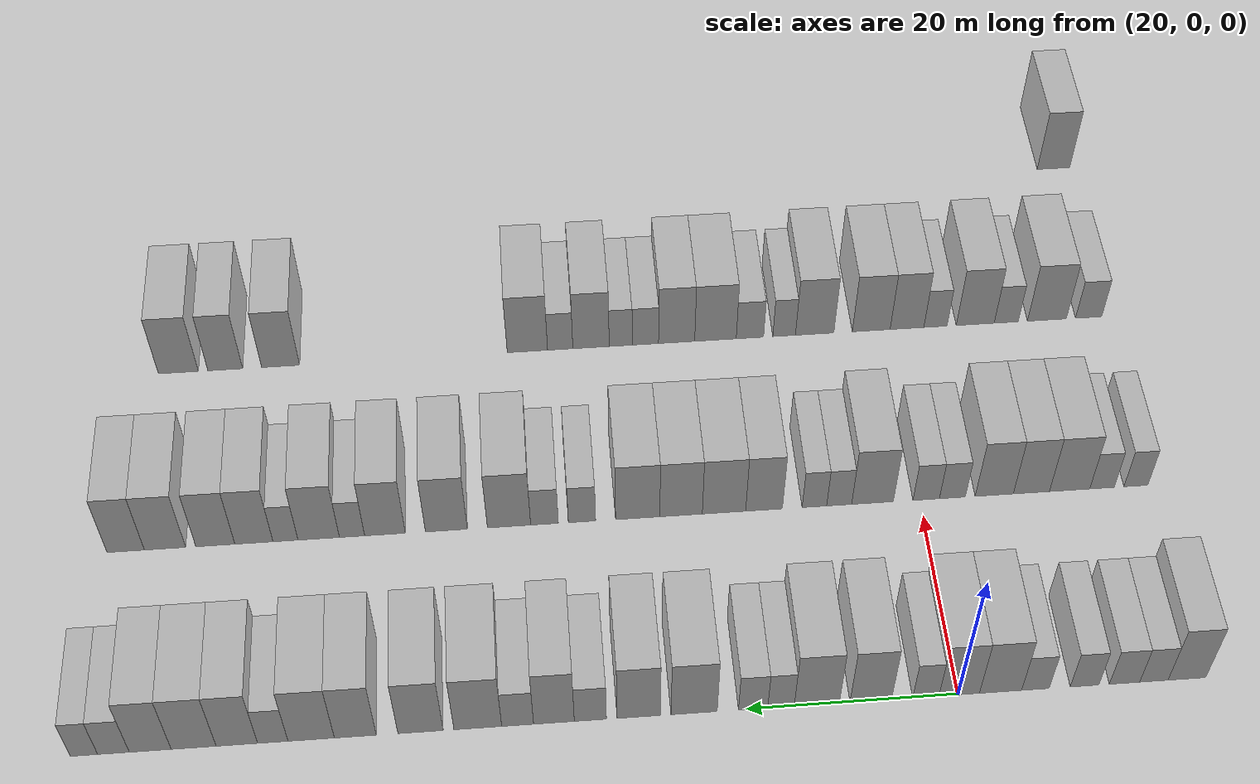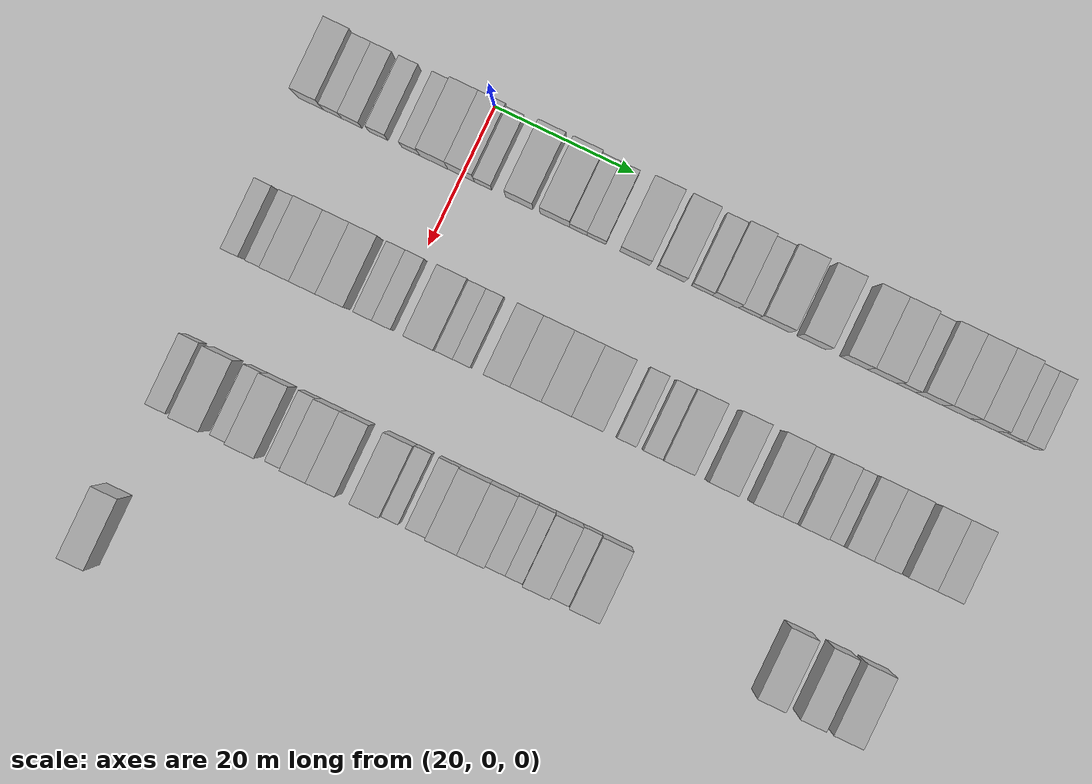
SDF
<sdf version="1.6">
 <world name="default">
  <include><name>ground_plane_1</name><uri>model://HANNAS_ground_plane</uri></include>
  <model name="building_89">
   <static>1</static>
   <pose>25.0000 -21.8179 0 0.000000 0.000000 0.000000</pose>
   <link name="link">
    <pose>0 0 4.50 0 0 0</pose>
    <collision name="collision"><geometry><box><size>10.0000 3.6219 9.0000</size></box></geometry></collision>
    <visual name="visual">
     <cast_shadows>0</cast_shadows>
     <geometry><box><size>10.0000 3.6219 9.0000</size></box></geometry>
     <material>
      <script>
       <uri>model://HANNAS_wall/materials/scripts</uri>
       <uri>model://HANNAS_wall/materials/textures</uri>
       <name>vrc/HANNAS_wall</name>
      </script>
     </material>
    </visual>
   </link>
  </model>
  <model name="building_90">
   <static>1</static>
   <pose>25.0000 -18.6524 0 0.000000 0.000000 0.000000</pose>
   <link name="link">
    <pose>0 0 3.00 0 0 0</pose>
    <collision name="collision"><geometry><box><size>10.0000 2.7091 6.0000</size></box></geometry></collision>
    <visual name="visual">
     <cast_shadows>0</cast_shadows>
     <geometry><box><size>10.0000 2.7091 6.0000</size></box></geometry>
     <material>
      <script>
       <uri>model://HANNAS_wall/materials/scripts</uri>
       <uri>model://HANNAS_wall/materials/textures</uri>
       <name>vrc/HANNAS_wall</name>
      </script>
     </material>
    </visual>
   </link>
  </model>
  <model name="building_91">
   <static>1</static>
   <pose>25.0000 -15.8432 0 0.000000 0.000000 0.000000</pose>
   <link name="link">
    <pose>0 0 3.00 0 0 0</pose>
    <collision name="collision"><geometry><box><size>10.0000 2.9094 6.0000</size></box></geometry></collision>
    <visual name="visual">
     <cast_shadows>0</cast_shadows>
     <geometry><box><size>10.0000 2.9094 6.0000</size></box></geometry>
     <material>
      <script>
       <uri>model://HANNAS_wall/materials/scripts</uri>
       <uri>model://HANNAS_wall/materials/textures</uri>
       <name>vrc/HANNAS_wall</name>
      </script>
     </material>
    </visual>
   </link>
  </model>
  <model name="building_92">
   <static>1</static>
   <pose>25.0000 -12.0194 0 0.000000 0.000000 0.000000</pose>
   <link name="link">
    <pose>0 0 3.00 0 0 0</pose>
    <collision name="collision"><geometry><box><size>10.0000 2.7382 6.0000</size></box></geometry></collision>
    <visual name="visual">
     <cast_shadows>0</cast_shadows>
     <geometry><box><size>10.0000 2.7382 6.0000</size></box></geometry>
     <material>
      <script>
       <uri>model://HANNAS_wall/materials/scripts</uri>
       <uri>model://HANNAS_wall/materials/textures</uri>
       <name>vrc/HANNAS_wall</name>
      </script>
     </material>
    </visual>
   </link>
  </model>
  <model name="building_93">
   <static>1</static>
   <pose>25.0000 -7.3389 0 0.000000 0.000000 0.000000</pose>
   <link name="link">
    <pose>0 0 3.00 0 0 0</pose>
    <collision name="collision"><geometry><box><size>10.0000 2.6229 6.0000</size></box></geometry></collision>
    <visual name="visual">
     <cast_shadows>0</cast_shadows>
     <geometry><box><size>10.0000 2.6229 6.0000</size></box></geometry>
     <material>
      <script>
       <uri>model://HANNAS_wall/materials/scripts</uri>
       <uri>model://HANNAS_wall/materials/textures</uri>
       <name>vrc/HANNAS_wall</name>
      </script>
     </material>
    </visual>
   </link>
  </model>
  <model name="building_94">
   <static>1</static>
   <pose>25.0000 -4.0224 0 0.000000 0.000000 0.000000</pose>
   <link name="link">
    <pose>0 0 4.50 0 0 0</pose>
    <collision name="collision"><geometry><box><size>10.0000 4.0100 9.0000</size></box></geometry></collision>
    <visual name="visual">
     <cast_shadows>0</cast_shadows>
     <geometry><box><size>10.0000 4.0100 9.0000</size></box></geometry>
     <material>
      <script>
       <uri>model://HANNAS_wall/materials/scripts</uri>
       <uri>model://HANNAS_wall/materials/textures</uri>
       <name>vrc/HANNAS_wall</name>
      </script>
     </material>
    </visual>
   </link>
  </model>
  <model name="building_95">
   <static>1</static>
   <pose>25.0000 -0.0886 0 0.000000 0.000000 0.000000</pose>
   <link name="link">
    <pose>0 0 4.50 0 0 0</pose>
    <collision name="collision"><geometry><box><size>10.0000 3.8577 9.0000</size></box></geometry></collision>
    <visual name="visual">
     <cast_shadows>0</cast_shadows>
     <geometry><box><size>10.0000 3.8577 9.0000</size></box></geometry>
     <material>
      <script>
       <uri>model://HANNAS_wall/materials/scripts</uri>
       <uri>model://HANNAS_wall/materials/textures</uri>
       <name>vrc/HANNAS_wall</name>
      </script>
     </material>
    </visual>
   </link>
  </model>
  <model name="building_96">
   <static>1</static>
   <pose>25.0000 3.0819 0 0.000000 0.000000 0.000000</pose>
   <link name="link">
    <pose>0 0 3.00 0 0 0</pose>
    <collision name="collision"><geometry><box><size>10.0000 2.4834 6.0000</size></box></geometry></collision>
    <visual name="visual">
     <cast_shadows>0</cast_shadows>
     <geometry><box><size>10.0000 2.4834 6.0000</size></box></geometry>
     <material>
      <script>
       <uri>model://HANNAS_wall/materials/scripts</uri>
       <uri>model://HANNAS_wall/materials/textures</uri>
       <name>vrc/HANNAS_wall</name>
      </script>
     </material>
    </visual>
   </link>
  </model>
  <model name="building_97">
   <static>1</static>
   <pose>25.0000 8.2869 0 0.000000 0.000000 0.000000</pose>
   <link name="link">
    <pose>0 0 4.50 0 0 0</pose>
    <collision name="collision"><geometry><box><size>10.0000 3.9265 9.0000</size></box></geometry></collision>
    <visual name="visual">
     <cast_shadows>0</cast_shadows>
     <geometry><box><size>10.0000 3.9265 9.0000</size></box></geometry>
     <material>
      <script>
       <uri>model://HANNAS_wall/materials/scripts</uri>
       <uri>model://HANNAS_wall/materials/textures</uri>
       <name>vrc/HANNAS_wall</name>
      </script>
     </material>
    </visual>
   </link>
  </model>
  <model name="building_98">
   <static>1</static>
   <pose>25.0000 13.3786 0 0.000000 0.000000 0.000000</pose>
   <link name="link">
    <pose>0 0 4.50 0 0 0</pose>
    <collision name="collision"><geometry><box><size>10.0000 4.2570 9.0000</size></box></geometry></collision>
    <visual name="visual">
     <cast_shadows>0</cast_shadows>
     <geometry><box><size>10.0000 4.2570 9.0000</size></box></geometry>
     <material>
      <script>
       <uri>model://HANNAS_wall/materials/scripts</uri>
       <uri>model://HANNAS_wall/materials/textures</uri>
       <name>vrc/HANNAS_wall</name>
      </script>
     </material>
    </visual>
   </link>
  </model>
  <model name="building_99">
   <static>1</static>
   <pose>25.0000 16.7518 0 0.000000 0.000000 0.000000</pose>
   <link name="link">
    <pose>0 0 3.00 0 0 0</pose>
    <collision name="collision"><geometry><box><size>10.0000 2.4895 6.0000</size></box></geometry></collision>
    <visual name="visual">
     <cast_shadows>0</cast_shadows>
     <geometry><box><size>10.0000 2.4895 6.0000</size></box></geometry>
     <material>
      <script>
       <uri>model://HANNAS_wall/materials/scripts</uri>
       <uri>model://HANNAS_wall/materials/textures</uri>
       <name>vrc/HANNAS_wall</name>
      </script>
     </material>
    </visual>
   </link>
  </model>
  <model name="building_100">
   <static>1</static>
   <pose>25.0000 19.3694 0 0.000000 0.000000 0.000000</pose>
   <link name="link">
    <pose>0 0 3.00 0 0 0</pose>
    <collision name="collision"><geometry><box><size>10.0000 2.7458 6.0000</size></box></geometry></collision>
    <visual name="visual">
     <cast_shadows>0</cast_shadows>
     <geometry><box><size>10.0000 2.7458 6.0000</size></box></geometry>
     <material>
      <script>
       <uri>model://HANNAS_wall/materials/scripts</uri>
       <uri>model://HANNAS_wall/materials/textures</uri>
       <name>vrc/HANNAS_wall</name>
      </script>
     </material>
    </visual>
   </link>
  </model>
  <model name="building_101">
   <static>1</static>
   <pose>25.0000 24.9051 0 0.000000 0.000000 0.000000</pose>
   <link name="link">
    <pose>0 0 4.50 0 0 0</pose>
    <collision name="collision"><geometry><box><size>10.0000 4.3256 9.0000</size></box></geometry></collision>
    <visual name="visual">
     <cast_shadows>0</cast_shadows>
     <geometry><box><size>10.0000 4.3256 9.0000</size></box></geometry>
     <material>
      <script>
       <uri>model://HANNAS_wall/materials/scripts</uri>
       <uri>model://HANNAS_wall/materials/textures</uri>
       <name>vrc/HANNAS_wall</name>
      </script>
     </material>
    </visual>
   </link>
  </model>
  <model name="building_102">
   <static>1</static>
   <pose>25.0000 30.0839 0 0.000000 0.000000 0.000000</pose>
   <link name="link">
    <pose>0 0 4.50 0 0 0</pose>
    <collision name="collision"><geometry><box><size>10.0000 4.0321 9.0000</size></box></geometry></collision>
    <visual name="visual">
     <cast_shadows>0</cast_shadows>
     <geometry><box><size>10.0000 4.0321 9.0000</size></box></geometry>
     <material>
      <script>
       <uri>model://HANNAS_wall/materials/scripts</uri>
       <uri>model://HANNAS_wall/materials/textures</uri>
       <name>vrc/HANNAS_wall</name>
      </script>
     </material>
    </visual>
   </link>
  </model>
  <model name="building_103">
   <static>1</static>
   <pose>25.0000 34.5970 0 0.000000 0.000000 0.000000</pose>
   <link name="link">
    <pose>0 0 3.00 0 0 0</pose>
    <collision name="collision"><geometry><box><size>10.0000 2.9940 6.0000</size></box></geometry></collision>
    <visual name="visual">
     <cast_shadows>0</cast_shadows>
     <geometry><box><size>10.0000 2.9940 6.0000</size></box></geometry>
     <material>
      <script>
       <uri>model://HANNAS_wall/materials/scripts</uri>
       <uri>model://HANNAS_wall/materials/textures</uri>
       <name>vrc/HANNAS_wall</name>
      </script>
     </material>
    </visual>
   </link>
  </model>
  <model name="building_104">
   <static>1</static>
   <pose>25.0000 37.9865 0 0.000000 0.000000 0.000000</pose>
   <link name="link">
    <pose>0 0 4.50 0 0 0</pose>
    <collision name="collision"><geometry><box><size>10.0000 3.7851 9.0000</size></box></geometry></collision>
    <visual name="visual">
     <cast_shadows>0</cast_shadows>
     <geometry><box><size>10.0000 3.7851 9.0000</size></box></geometry>
     <material>
      <script>
       <uri>model://HANNAS_wall/materials/scripts</uri>
       <uri>model://HANNAS_wall/materials/textures</uri>
       <name>vrc/HANNAS_wall</name>
      </script>
     </material>
    </visual>
   </link>
  </model>
  <model name="building_105">
   <static>1</static>
   <pose>25.0000 41.3603 0 0.000000 0.000000 0.000000</pose>
   <link name="link">
    <pose>0 0 3.00 0 0 0</pose>
    <collision name="collision"><geometry><box><size>10.0000 2.9624 6.0000</size></box></geometry></collision>
    <visual name="visual">
     <cast_shadows>0</cast_shadows>
     <geometry><box><size>10.0000 2.9624 6.0000</size></box></geometry>
     <material>
      <script>
       <uri>model://HANNAS_wall/materials/scripts</uri>
       <uri>model://HANNAS_wall/materials/textures</uri>
       <name>vrc/HANNAS_wall</name>
      </script>
     </material>
    </visual>
   </link>
  </model>
  <model name="building_106">
   <static>1</static>
   <pose>25.0000 45.0570 0 0.000000 0.000000 0.000000</pose>
   <link name="link">
    <pose>0 0 4.50 0 0 0</pose>
    <collision name="collision"><geometry><box><size>10.0000 4.4311 9.0000</size></box></geometry></collision>
    <visual name="visual">
     <cast_shadows>0</cast_shadows>
     <geometry><box><size>10.0000 4.4311 9.0000</size></box></geometry>
     <material>
      <script>
       <uri>model://HANNAS_wall/materials/scripts</uri>
       <uri>model://HANNAS_wall/materials/textures</uri>
       <name>vrc/HANNAS_wall</name>
      </script>
     </material>
    </visual>
   </link>
  </model>
  <model name="building_107">
   <static>1</static>
   <pose>25.0000 50.3610 0 0.000000 0.000000 0.000000</pose>
   <link name="link">
    <pose>0 0 4.50 0 0 0</pose>
    <collision name="collision"><geometry><box><size>10.0000 4.1769 9.0000</size></box></geometry></collision>
    <visual name="visual">
     <cast_shadows>0</cast_shadows>
     <geometry><box><size>10.0000 4.1769 9.0000</size></box></geometry>
     <material>
      <script>
       <uri>model://HANNAS_wall/materials/scripts</uri>
       <uri>model://HANNAS_wall/materials/textures</uri>
       <name>vrc/HANNAS_wall</name>
      </script>
     </material>
    </visual>
   </link>
  </model>
  <model name="building_108">
   <static>1</static>
   <pose>25.0000 56.3817 0 0.000000 0.000000 0.000000</pose>
   <link name="link">
    <pose>0 0 4.50 0 0 0</pose>
    <collision name="collision"><geometry><box><size>10.0000 3.8645 9.0000</size></box></geometry></collision>
    <visual name="visual">
     <cast_shadows>0</cast_shadows>
     <geometry><box><size>10.0000 3.8645 9.0000</size></box></geometry>
     <material>
      <script>
       <uri>model://HANNAS_wall/materials/scripts</uri>
       <uri>model://HANNAS_wall/materials/textures</uri>
       <name>vrc/HANNAS_wall</name>
      </script>
     </material>
    </visual>
   </link>
  </model>
  <model name="building_109">
   <static>1</static>
   <pose>25.0000 60.4448 0 0.000000 0.000000 0.000000</pose>
   <link name="link">
    <pose>0 0 4.50 0 0 0</pose>
    <collision name="collision"><geometry><box><size>10.0000 4.2619 9.0000</size></box></geometry></collision>
    <visual name="visual">
     <cast_shadows>0</cast_shadows>
     <geometry><box><size>10.0000 4.2619 9.0000</size></box></geometry>
     <material>
      <script>
       <uri>model://HANNAS_wall/materials/scripts</uri>
       <uri>model://HANNAS_wall/materials/textures</uri>
       <name>vrc/HANNAS_wall</name>
      </script>
     </material>
    </visual>
   </link>
  </model>
  <model name="building_110">
   <static>1</static>
   <pose>25.0000 63.9657 0 0.000000 0.000000 0.000000</pose>
   <link name="link">
    <pose>0 0 3.00 0 0 0</pose>
    <collision name="collision"><geometry><box><size>10.0000 2.7798 6.0000</size></box></geometry></collision>
    <visual name="visual">
     <cast_shadows>0</cast_shadows>
     <geometry><box><size>10.0000 2.7798 6.0000</size></box></geometry>
     <material>
      <script>
       <uri>model://HANNAS_wall/materials/scripts</uri>
       <uri>model://HANNAS_wall/materials/textures</uri>
       <name>vrc/HANNAS_wall</name>
      </script>
     </material>
    </visual>
   </link>
  </model>
  <model name="building_111">
   <static>1</static>
   <pose>25.0000 67.2646 0 0.000000 0.000000 0.000000</pose>
   <link name="link">
    <pose>0 0 4.50 0 0 0</pose>
    <collision name="collision"><geometry><box><size>10.0000 3.8181 9.0000</size></box></geometry></collision>
    <visual name="visual">
     <cast_shadows>0</cast_shadows>
     <geometry><box><size>10.0000 3.8181 9.0000</size></box></geometry>
     <material>
      <script>
       <uri>model://HANNAS_wall/materials/scripts</uri>
       <uri>model://HANNAS_wall/materials/textures</uri>
       <name>vrc/HANNAS_wall</name>
      </script>
     </material>
    </visual>
   </link>
  </model>
  <model name="building_112">
   <static>1</static>
   <pose>25.0000 71.2280 0 0.000000 0.000000 0.000000</pose>
   <link name="link">
    <pose>0 0 4.50 0 0 0</pose>
    <collision name="collision"><geometry><box><size>10.0000 4.1087 9.0000</size></box></geometry></collision>
    <visual name="visual">
     <cast_shadows>0</cast_shadows>
     <geometry><box><size>10.0000 4.1087 9.0000</size></box></geometry>
     <material>
      <script>
       <uri>model://HANNAS_wall/materials/scripts</uri>
       <uri>model://HANNAS_wall/materials/textures</uri>
       <name>vrc/HANNAS_wall</name>
      </script>
     </material>
    </visual>
   </link>
  </model>
  <model name="building_113">
   <static>1</static>
   <pose>25.0000 75.1966 0 0.000000 0.000000 0.000000</pose>
   <link name="link">
    <pose>0 0 4.50 0 0 0</pose>
    <collision name="collision"><geometry><box><size>10.0000 3.8285 9.0000</size></box></geometry></collision>
    <visual name="visual">
     <cast_shadows>0</cast_shadows>
     <geometry><box><size>10.0000 3.8285 9.0000</size></box></geometry>
     <material>
      <script>
       <uri>model://HANNAS_wall/materials/scripts</uri>
       <uri>model://HANNAS_wall/materials/textures</uri>
       <name>vrc/HANNAS_wall</name>
      </script>
     </material>
    </visual>
   </link>
  </model>
  <model name="building_114">
   <static>1</static>
   <pose>25.0000 78.5517 0 0.000000 0.000000 0.000000</pose>
   <link name="link">
    <pose>0 0 3.00 0 0 0</pose>
    <collision name="collision"><geometry><box><size>10.0000 2.8815 6.0000</size></box></geometry></collision>
    <visual name="visual">
     <cast_shadows>0</cast_shadows>
     <geometry><box><size>10.0000 2.8815 6.0000</size></box></geometry>
     <material>
      <script>
       <uri>model://HANNAS_wall/materials/scripts</uri>
       <uri>model://HANNAS_wall/materials/textures</uri>
       <name>vrc/HANNAS_wall</name>
      </script>
     </material>
    </visual>
   </link>
  </model>
  <model name="building_115">
   <static>1</static>
   <pose>25.0000 81.2301 0 0.000000 0.000000 0.000000</pose>
   <link name="link">
    <pose>0 0 3.00 0 0 0</pose>
    <collision name="collision"><geometry><box><size>10.0000 2.4753 6.0000</size></box></geometry></collision>
    <visual name="visual">
     <cast_shadows>0</cast_shadows>
     <geometry><box><size>10.0000 2.4753 6.0000</size></box></geometry>
     <material>
      <script>
       <uri>model://HANNAS_wall/materials/scripts</uri>
       <uri>model://HANNAS_wall/materials/textures</uri>
       <name>vrc/HANNAS_wall</name>
      </script>
     </material>
    </visual>
   </link>
  </model>
  <model name="building_283">
   <static>1</static>
   <pose>47.0000 -22.0523 0 0.000000 0.000000 0.000000</pose>
   <link name="link">
    <pose>0 0 3.00 0 0 0</pose>
    <collision name="collision"><geometry><box><size>10.0000 2.4547 6.0000</size></box></geometry></collision>
    <visual name="visual">
     <cast_shadows>0</cast_shadows>
     <geometry><box><size>10.0000 2.4547 6.0000</size></box></geometry>
     <material>
      <script>
       <uri>model://HANNAS_wall/materials/scripts</uri>
       <uri>model://HANNAS_wall/materials/textures</uri>
       <name>vrc/HANNAS_wall</name>
      </script>
     </material>
    </visual>
   </link>
  </model>
  <model name="building_284">
   <static>1</static>
   <pose>47.0000 -18.5710 0 0.000000 0.000000 0.000000</pose>
   <link name="link">
    <pose>0 0 3.00 0 0 0</pose>
    <collision name="collision"><geometry><box><size>10.0000 2.5079 6.0000</size></box></geometry></collision>
    <visual name="visual">
     <cast_shadows>0</cast_shadows>
     <geometry><box><size>10.0000 2.5079 6.0000</size></box></geometry>
     <material>
      <script>
       <uri>model://HANNAS_wall/materials/scripts</uri>
       <uri>model://HANNAS_wall/materials/textures</uri>
       <name>vrc/HANNAS_wall</name>
      </script>
     </material>
    </visual>
   </link>
  </model>
  <model name="building_285">
   <static>1</static>
   <pose>47.0000 -15.2539 0 0.000000 0.000000 0.000000</pose>
   <link name="link">
    <pose>0 0 4.50 0 0 0</pose>
    <collision name="collision"><geometry><box><size>10.0000 4.1262 9.0000</size></box></geometry></collision>
    <visual name="visual">
     <cast_shadows>0</cast_shadows>
     <geometry><box><size>10.0000 4.1262 9.0000</size></box></geometry>
     <material>
      <script>
       <uri>model://HANNAS_wall/materials/scripts</uri>
       <uri>model://HANNAS_wall/materials/textures</uri>
       <name>vrc/HANNAS_wall</name>
      </script>
     </material>
    </visual>
   </link>
  </model>
  <model name="building_286">
   <static>1</static>
   <pose>47.0000 -11.3450 0 0.000000 0.000000 0.000000</pose>
   <link name="link">
    <pose>0 0 4.50 0 0 0</pose>
    <collision name="collision"><geometry><box><size>10.0000 3.6914 9.0000</size></box></geometry></collision>
    <visual name="visual">
     <cast_shadows>0</cast_shadows>
     <geometry><box><size>10.0000 3.6914 9.0000</size></box></geometry>
     <material>
      <script>
       <uri>model://HANNAS_wall/materials/scripts</uri>
       <uri>model://HANNAS_wall/materials/textures</uri>
       <name>vrc/HANNAS_wall</name>
      </script>
     </material>
    </visual>
   </link>
  </model>
  <model name="building_287">
   <static>1</static>
   <pose>47.0000 -7.5524 0 0.000000 0.000000 0.000000</pose>
   <link name="link">
    <pose>0 0 4.50 0 0 0</pose>
    <collision name="collision"><geometry><box><size>10.0000 3.8938 9.0000</size></box></geometry></collision>
    <visual name="visual">
     <cast_shadows>0</cast_shadows>
     <geometry><box><size>10.0000 3.8938 9.0000</size></box></geometry>
     <material>
      <script>
       <uri>model://HANNAS_wall/materials/scripts</uri>
       <uri>model://HANNAS_wall/materials/textures</uri>
       <name>vrc/HANNAS_wall</name>
      </script>
     </material>
    </visual>
   </link>
  </model>
  <model name="building_288">
   <static>1</static>
   <pose>47.0000 -3.2856 0 0.000000 0.000000 0.000000</pose>
   <link name="link">
    <pose>0 0 3.00 0 0 0</pose>
    <collision name="collision"><geometry><box><size>10.0000 2.6398 6.0000</size></box></geometry></collision>
    <visual name="visual">
     <cast_shadows>0</cast_shadows>
     <geometry><box><size>10.0000 2.6398 6.0000</size></box></geometry>
     <material>
      <script>
       <uri>model://HANNAS_wall/materials/scripts</uri>
       <uri>model://HANNAS_wall/materials/textures</uri>
       <name>vrc/HANNAS_wall</name>
      </script>
     </material>
    </visual>
   </link>
  </model>
  <model name="building_289">
   <static>1</static>
   <pose>47.0000 -0.6223 0 0.000000 0.000000 0.000000</pose>
   <link name="link">
    <pose>0 0 3.00 0 0 0</pose>
    <collision name="collision"><geometry><box><size>10.0000 2.6866 6.0000</size></box></geometry></collision>
    <visual name="visual">
     <cast_shadows>0</cast_shadows>
     <geometry><box><size>10.0000 2.6866 6.0000</size></box></geometry>
     <material>
      <script>
       <uri>model://HANNAS_wall/materials/scripts</uri>
       <uri>model://HANNAS_wall/materials/textures</uri>
       <name>vrc/HANNAS_wall</name>
      </script>
     </material>
    </visual>
   </link>
  </model>
  <model name="building_290">
   <static>1</static>
   <pose>47.0000 4.8324 0 0.000000 0.000000 0.000000</pose>
   <link name="link">
    <pose>0 0 4.50 0 0 0</pose>
    <collision name="collision"><geometry><box><size>10.0000 4.2229 9.0000</size></box></geometry></collision>
    <visual name="visual">
     <cast_shadows>0</cast_shadows>
     <geometry><box><size>10.0000 4.2229 9.0000</size></box></geometry>
     <material>
      <script>
       <uri>model://HANNAS_wall/materials/scripts</uri>
       <uri>model://HANNAS_wall/materials/textures</uri>
       <name>vrc/HANNAS_wall</name>
      </script>
     </material>
    </visual>
   </link>
  </model>
  <model name="building_291">
   <static>1</static>
   <pose>47.0000 8.2078 0 0.000000 0.000000 0.000000</pose>
   <link name="link">
    <pose>0 0 3.00 0 0 0</pose>
    <collision name="collision"><geometry><box><size>10.0000 2.5279 6.0000</size></box></geometry></collision>
    <visual name="visual">
     <cast_shadows>0</cast_shadows>
     <geometry><box><size>10.0000 2.5279 6.0000</size></box></geometry>
     <material>
      <script>
       <uri>model://HANNAS_wall/materials/scripts</uri>
       <uri>model://HANNAS_wall/materials/textures</uri>
       <name>vrc/HANNAS_wall</name>
      </script>
     </material>
    </visual>
   </link>
  </model>
  <model name="building_292">
   <static>1</static>
   <pose>47.0000 10.7117 0 0.000000 0.000000 0.000000</pose>
   <link name="link">
    <pose>0 0 3.00 0 0 0</pose>
    <collision name="collision"><geometry><box><size>10.0000 2.4799 6.0000</size></box></geometry></collision>
    <visual name="visual">
     <cast_shadows>0</cast_shadows>
     <geometry><box><size>10.0000 2.4799 6.0000</size></box></geometry>
     <material>
      <script>
       <uri>model://HANNAS_wall/materials/scripts</uri>
       <uri>model://HANNAS_wall/materials/textures</uri>
       <name>vrc/HANNAS_wall</name>
      </script>
     </material>
    </visual>
   </link>
  </model>
  <model name="building_293">
   <static>1</static>
   <pose>47.0000 15.8009 0 0.000000 0.000000 0.000000</pose>
   <link name="link">
    <pose>0 0 4.50 0 0 0</pose>
    <collision name="collision"><geometry><box><size>10.0000 3.6984 9.0000</size></box></geometry></collision>
    <visual name="visual">
     <cast_shadows>0</cast_shadows>
     <geometry><box><size>10.0000 3.6984 9.0000</size></box></geometry>
     <material>
      <script>
       <uri>model://HANNAS_wall/materials/scripts</uri>
       <uri>model://HANNAS_wall/materials/textures</uri>
       <name>vrc/HANNAS_wall</name>
      </script>
     </material>
    </visual>
   </link>
  </model>
  <model name="building_294">
   <static>1</static>
   <pose>47.0000 19.8344 0 0.000000 0.000000 0.000000</pose>
   <link name="link">
    <pose>0 0 4.50 0 0 0</pose>
    <collision name="collision"><geometry><box><size>10.0000 4.3687 9.0000</size></box></geometry></collision>
    <visual name="visual">
     <cast_shadows>0</cast_shadows>
     <geometry><box><size>10.0000 4.3687 9.0000</size></box></geometry>
     <material>
      <script>
       <uri>model://HANNAS_wall/materials/scripts</uri>
       <uri>model://HANNAS_wall/materials/textures</uri>
       <name>vrc/HANNAS_wall</name>
      </script>
     </material>
    </visual>
   </link>
  </model>
  <model name="building_295">
   <static>1</static>
   <pose>47.0000 24.1521 0 0.000000 0.000000 0.000000</pose>
   <link name="link">
    <pose>0 0 4.50 0 0 0</pose>
    <collision name="collision"><geometry><box><size>10.0000 4.2667 9.0000</size></box></geometry></collision>
    <visual name="visual">
     <cast_shadows>0</cast_shadows>
     <geometry><box><size>10.0000 4.2667 9.0000</size></box></geometry>
     <material>
      <script>
       <uri>model://HANNAS_wall/materials/scripts</uri>
       <uri>model://HANNAS_wall/materials/textures</uri>
       <name>vrc/HANNAS_wall</name>
      </script>
     </material>
    </visual>
   </link>
  </model>
  <model name="building_296">
   <static>1</static>
   <pose>47.0000 28.5020 0 0.000000 0.000000 0.000000</pose>
   <link name="link">
    <pose>0 0 4.50 0 0 0</pose>
    <collision name="collision"><geometry><box><size>10.0000 4.4329 9.0000</size></box></geometry></collision>
    <visual name="visual">
     <cast_shadows>0</cast_shadows>
     <geometry><box><size>10.0000 4.4329 9.0000</size></box></geometry>
     <material>
      <script>
       <uri>model://HANNAS_wall/materials/scripts</uri>
       <uri>model://HANNAS_wall/materials/textures</uri>
       <name>vrc/HANNAS_wall</name>
      </script>
     </material>
    </visual>
   </link>
  </model>
  <model name="building_297">
   <static>1</static>
   <pose>47.0000 34.0813 0 0.000000 0.000000 0.000000</pose>
   <link name="link">
    <pose>0 0 3.00 0 0 0</pose>
    <collision name="collision"><geometry><box><size>10.0000 2.7257 6.0000</size></box></geometry></collision>
    <visual name="visual">
     <cast_shadows>0</cast_shadows>
     <geometry><box><size>10.0000 2.7257 6.0000</size></box></geometry>
     <material>
      <script>
       <uri>model://HANNAS_wall/materials/scripts</uri>
       <uri>model://HANNAS_wall/materials/textures</uri>
       <name>vrc/HANNAS_wall</name>
      </script>
     </material>
    </visual>
   </link>
  </model>
  <model name="building_298">
   <static>1</static>
   <pose>47.0000 37.8254 0 0.000000 0.000000 0.000000</pose>
   <link name="link">
    <pose>0 0 3.00 0 0 0</pose>
    <collision name="collision"><geometry><box><size>10.0000 2.7627 6.0000</size></box></geometry></collision>
    <visual name="visual">
     <cast_shadows>0</cast_shadows>
     <geometry><box><size>10.0000 2.7627 6.0000</size></box></geometry>
     <material>
      <script>
       <uri>model://HANNAS_wall/materials/scripts</uri>
       <uri>model://HANNAS_wall/materials/textures</uri>
       <name>vrc/HANNAS_wall</name>
      </script>
     </material>
    </visual>
   </link>
  </model>
  <model name="building_299">
   <static>1</static>
   <pose>47.0000 41.3610 0 0.000000 0.000000 0.000000</pose>
   <link name="link">
    <pose>0 0 4.50 0 0 0</pose>
    <collision name="collision"><geometry><box><size>10.0000 4.3084 9.0000</size></box></geometry></collision>
    <visual name="visual">
     <cast_shadows>0</cast_shadows>
     <geometry><box><size>10.0000 4.3084 9.0000</size></box></geometry>
     <material>
      <script>
       <uri>model://HANNAS_wall/materials/scripts</uri>
       <uri>model://HANNAS_wall/materials/textures</uri>
       <name>vrc/HANNAS_wall</name>
      </script>
     </material>
    </visual>
   </link>
  </model>
  <model name="building_300">
   <static>1</static>
   <pose>47.0000 47.5957 0 0.000000 0.000000 0.000000</pose>
   <link name="link">
    <pose>0 0 4.50 0 0 0</pose>
    <collision name="collision"><geometry><box><size>10.0000 4.1609 9.0000</size></box></geometry></collision>
    <visual name="visual">
     <cast_shadows>0</cast_shadows>
     <geometry><box><size>10.0000 4.1609 9.0000</size></box></geometry>
     <material>
      <script>
       <uri>model://HANNAS_wall/materials/scripts</uri>
       <uri>model://HANNAS_wall/materials/textures</uri>
       <name>vrc/HANNAS_wall</name>
      </script>
     </material>
    </visual>
   </link>
  </model>
  <model name="building_301">
   <static>1</static>
   <pose>47.0000 53.6887 0 0.000000 0.000000 0.000000</pose>
   <link name="link">
    <pose>0 0 4.50 0 0 0</pose>
    <collision name="collision"><geometry><box><size>10.0000 4.0251 9.0000</size></box></geometry></collision>
    <visual name="visual">
     <cast_shadows>0</cast_shadows>
     <geometry><box><size>10.0000 4.0251 9.0000</size></box></geometry>
     <material>
      <script>
       <uri>model://HANNAS_wall/materials/scripts</uri>
       <uri>model://HANNAS_wall/materials/textures</uri>
       <name>vrc/HANNAS_wall</name>
      </script>
     </material>
    </visual>
   </link>
  </model>
  <model name="building_302">
   <static>1</static>
   <pose>47.0000 56.9522 0 0.000000 0.000000 0.000000</pose>
   <link name="link">
    <pose>0 0 3.00 0 0 0</pose>
    <collision name="collision"><geometry><box><size>10.0000 2.5018 6.0000</size></box></geometry></collision>
    <visual name="visual">
     <cast_shadows>0</cast_shadows>
     <geometry><box><size>10.0000 2.5018 6.0000</size></box></geometry>
     <material>
      <script>
       <uri>model://HANNAS_wall/materials/scripts</uri>
       <uri>model://HANNAS_wall/materials/textures</uri>
       <name>vrc/HANNAS_wall</name>
      </script>
     </material>
    </visual>
   </link>
  </model>
  <model name="building_303">
   <static>1</static>
   <pose>47.0000 60.2487 0 0.000000 0.000000 0.000000</pose>
   <link name="link">
    <pose>0 0 4.50 0 0 0</pose>
    <collision name="collision"><geometry><box><size>10.0000 4.0913 9.0000</size></box></geometry></collision>
    <visual name="visual">
     <cast_shadows>0</cast_shadows>
     <geometry><box><size>10.0000 4.0913 9.0000</size></box></geometry>
     <material>
      <script>
       <uri>model://HANNAS_wall/materials/scripts</uri>
       <uri>model://HANNAS_wall/materials/textures</uri>
       <name>vrc/HANNAS_wall</name>
      </script>
     </material>
    </visual>
   </link>
  </model>
  <model name="building_304">
   <static>1</static>
   <pose>47.0000 63.5246 0 0.000000 0.000000 0.000000</pose>
   <link name="link">
    <pose>0 0 3.00 0 0 0</pose>
    <collision name="collision"><geometry><box><size>10.0000 2.4605 6.0000</size></box></geometry></collision>
    <visual name="visual">
     <cast_shadows>0</cast_shadows>
     <geometry><box><size>10.0000 2.4605 6.0000</size></box></geometry>
     <material>
      <script>
       <uri>model://HANNAS_wall/materials/scripts</uri>
       <uri>model://HANNAS_wall/materials/textures</uri>
       <name>vrc/HANNAS_wall</name>
      </script>
     </material>
    </visual>
   </link>
  </model>
  <model name="building_305">
   <static>1</static>
   <pose>47.0000 66.6303 0 0.000000 0.000000 0.000000</pose>
   <link name="link">
    <pose>0 0 4.50 0 0 0</pose>
    <collision name="collision"><geometry><box><size>10.0000 3.7510 9.0000</size></box></geometry></collision>
    <visual name="visual">
     <cast_shadows>0</cast_shadows>
     <geometry><box><size>10.0000 3.7510 9.0000</size></box></geometry>
     <material>
      <script>
       <uri>model://HANNAS_wall/materials/scripts</uri>
       <uri>model://HANNAS_wall/materials/textures</uri>
       <name>vrc/HANNAS_wall</name>
      </script>
     </material>
    </visual>
   </link>
  </model>
  <model name="building_306">
   <static>1</static>
   <pose>47.0000 70.4252 0 0.000000 0.000000 0.000000</pose>
   <link name="link">
    <pose>0 0 4.50 0 0 0</pose>
    <collision name="collision"><geometry><box><size>10.0000 3.8387 9.0000</size></box></geometry></collision>
    <visual name="visual">
     <cast_shadows>0</cast_shadows>
     <geometry><box><size>10.0000 3.8387 9.0000</size></box></geometry>
     <material>
      <script>
       <uri>model://HANNAS_wall/materials/scripts</uri>
       <uri>model://HANNAS_wall/materials/textures</uri>
       <name>vrc/HANNAS_wall</name>
      </script>
     </material>
    </visual>
   </link>
  </model>
  <model name="building_307">
   <static>1</static>
   <pose>47.0000 75.3689 0 0.000000 0.000000 0.000000</pose>
   <link name="link">
    <pose>0 0 4.50 0 0 0</pose>
    <collision name="collision"><geometry><box><size>10.0000 4.0488 9.0000</size></box></geometry></collision>
    <visual name="visual">
     <cast_shadows>0</cast_shadows>
     <geometry><box><size>10.0000 4.0488 9.0000</size></box></geometry>
     <material>
      <script>
       <uri>model://HANNAS_wall/materials/scripts</uri>
       <uri>model://HANNAS_wall/materials/textures</uri>
       <name>vrc/HANNAS_wall</name>
      </script>
     </material>
    </visual>
   </link>
  </model>
  <model name="building_308">
   <static>1</static>
   <pose>47.0000 79.2214 0 0.000000 0.000000 0.000000</pose>
   <link name="link">
    <pose>0 0 4.50 0 0 0</pose>
    <collision name="collision"><geometry><box><size>10.0000 3.6561 9.0000</size></box></geometry></collision>
    <visual name="visual">
     <cast_shadows>0</cast_shadows>
     <geometry><box><size>10.0000 3.6561 9.0000</size></box></geometry>
     <material>
      <script>
       <uri>model://HANNAS_wall/materials/scripts</uri>
       <uri>model://HANNAS_wall/materials/textures</uri>
       <name>vrc/HANNAS_wall</name>
      </script>
     </material>
    </visual>
   </link>
  </model>
  <model name="building_472">
   <static>1</static>
   <pose>69.0000 -21.9953 0 0.000000 0.000000 0.000000</pose>
   <link name="link">
    <pose>0 0 3.00 0 0 0</pose>
    <collision name="collision"><geometry><box><size>10.0000 2.8675 6.0000</size></box></geometry></collision>
    <visual name="visual">
     <cast_shadows>0</cast_shadows>
     <geometry><box><size>10.0000 2.8675 6.0000</size></box></geometry>
     <material>
      <script>
       <uri>model://HANNAS_wall/materials/scripts</uri>
       <uri>model://HANNAS_wall/materials/textures</uri>
       <name>vrc/HANNAS_wall</name>
      </script>
     </material>
    </visual>
   </link>
  </model>
  <model name="building_473">
   <static>1</static>
   <pose>69.0000 -17.4333 0 0.000000 0.000000 0.000000</pose>
   <link name="link">
    <pose>0 0 4.50 0 0 0</pose>
    <collision name="collision"><geometry><box><size>10.0000 4.2564 9.0000</size></box></geometry></collision>
    <visual name="visual">
     <cast_shadows>0</cast_shadows>
     <geometry><box><size>10.0000 4.2564 9.0000</size></box></geometry>
     <material>
      <script>
       <uri>model://HANNAS_wall/materials/scripts</uri>
       <uri>model://HANNAS_wall/materials/textures</uri>
       <name>vrc/HANNAS_wall</name>
      </script>
     </material>
    </visual>
   </link>
  </model>
  <model name="building_474">
   <static>1</static>
   <pose>69.0000 -12.9957 0 0.000000 0.000000 0.000000</pose>
   <link name="link">
    <pose>0 0 3.00 0 0 0</pose>
    <collision name="collision"><geometry><box><size>10.0000 2.6189 6.0000</size></box></geometry></collision>
    <visual name="visual">
     <cast_shadows>0</cast_shadows>
     <geometry><box><size>10.0000 2.6189 6.0000</size></box></geometry>
     <material>
      <script>
       <uri>model://HANNAS_wall/materials/scripts</uri>
       <uri>model://HANNAS_wall/materials/textures</uri>
       <name>vrc/HANNAS_wall</name>
      </script>
     </material>
    </visual>
   </link>
  </model>
  <model name="building_475">
   <static>1</static>
   <pose>69.0000 -9.6176 0 0.000000 0.000000 0.000000</pose>
   <link name="link">
    <pose>0 0 4.50 0 0 0</pose>
    <collision name="collision"><geometry><box><size>10.0000 4.1373 9.0000</size></box></geometry></collision>
    <visual name="visual">
     <cast_shadows>0</cast_shadows>
     <geometry><box><size>10.0000 4.1373 9.0000</size></box></geometry>
     <material>
      <script>
       <uri>model://HANNAS_wall/materials/scripts</uri>
       <uri>model://HANNAS_wall/materials/textures</uri>
       <name>vrc/HANNAS_wall</name>
      </script>
     </material>
    </visual>
   </link>
  </model>
  <model name="building_476">
   <static>1</static>
   <pose>69.0000 -5.2894 0 0.000000 0.000000 0.000000</pose>
   <link name="link">
    <pose>0 0 3.00 0 0 0</pose>
    <collision name="collision"><geometry><box><size>10.0000 2.5192 6.0000</size></box></geometry></collision>
    <visual name="visual">
     <cast_shadows>0</cast_shadows>
     <geometry><box><size>10.0000 2.5192 6.0000</size></box></geometry>
     <material>
      <script>
       <uri>model://HANNAS_wall/materials/scripts</uri>
       <uri>model://HANNAS_wall/materials/textures</uri>
       <name>vrc/HANNAS_wall</name>
      </script>
     </material>
    </visual>
   </link>
  </model>
  <model name="building_477">
   <static>1</static>
   <pose>69.0000 -2.1994 0 0.000000 0.000000 0.000000</pose>
   <link name="link">
    <pose>0 0 4.50 0 0 0</pose>
    <collision name="collision"><geometry><box><size>10.0000 3.6608 9.0000</size></box></geometry></collision>
    <visual name="visual">
     <cast_shadows>0</cast_shadows>
     <geometry><box><size>10.0000 3.6608 9.0000</size></box></geometry>
     <material>
      <script>
       <uri>model://HANNAS_wall/materials/scripts</uri>
       <uri>model://HANNAS_wall/materials/textures</uri>
       <name>vrc/HANNAS_wall</name>
      </script>
     </material>
    </visual>
   </link>
  </model>
  <model name="building_478">
   <static>1</static>
   <pose>69.0000 1.6772 0 0.000000 0.000000 0.000000</pose>
   <link name="link">
    <pose>0 0 4.50 0 0 0</pose>
    <collision name="collision"><geometry><box><size>10.0000 4.0924 9.0000</size></box></geometry></collision>
    <visual name="visual">
     <cast_shadows>0</cast_shadows>
     <geometry><box><size>10.0000 4.0924 9.0000</size></box></geometry>
     <material>
      <script>
       <uri>model://HANNAS_wall/materials/scripts</uri>
       <uri>model://HANNAS_wall/materials/textures</uri>
       <name>vrc/HANNAS_wall</name>
      </script>
     </material>
    </visual>
   </link>
  </model>
  <model name="building_479">
   <static>1</static>
   <pose>69.0000 7.7973 0 0.000000 0.000000 0.000000</pose>
   <link name="link">
    <pose>0 0 4.50 0 0 0</pose>
    <collision name="collision"><geometry><box><size>10.0000 4.1478 9.0000</size></box></geometry></collision>
    <visual name="visual">
     <cast_shadows>0</cast_shadows>
     <geometry><box><size>10.0000 4.1478 9.0000</size></box></geometry>
     <material>
      <script>
       <uri>model://HANNAS_wall/materials/scripts</uri>
       <uri>model://HANNAS_wall/materials/textures</uri>
       <name>vrc/HANNAS_wall</name>
      </script>
     </material>
    </visual>
   </link>
  </model>
  <model name="building_480">
   <static>1</static>
   <pose>69.0000 11.0903 0 0.000000 0.000000 0.000000</pose>
   <link name="link">
    <pose>0 0 3.00 0 0 0</pose>
    <collision name="collision"><geometry><box><size>10.0000 2.4383 6.0000</size></box></geometry></collision>
    <visual name="visual">
     <cast_shadows>0</cast_shadows>
     <geometry><box><size>10.0000 2.4383 6.0000</size></box></geometry>
     <material>
      <script>
       <uri>model://HANNAS_wall/materials/scripts</uri>
       <uri>model://HANNAS_wall/materials/textures</uri>
       <name>vrc/HANNAS_wall</name>
      </script>
     </material>
    </visual>
   </link>
  </model>
  <model name="building_481">
   <static>1</static>
   <pose>69.0000 14.7812 0 0.000000 0.000000 0.000000</pose>
   <link name="link">
    <pose>0 0 3.00 0 0 0</pose>
    <collision name="collision"><geometry><box><size>10.0000 2.9436 6.0000</size></box></geometry></collision>
    <visual name="visual">
     <cast_shadows>0</cast_shadows>
     <geometry><box><size>10.0000 2.9436 6.0000</size></box></geometry>
     <material>
      <script>
       <uri>model://HANNAS_wall/materials/scripts</uri>
       <uri>model://HANNAS_wall/materials/textures</uri>
       <name>vrc/HANNAS_wall</name>
      </script>
     </material>
    </visual>
   </link>
  </model>
  <model name="building_482">
   <static>1</static>
   <pose>69.0000 18.4847 0 0.000000 0.000000 0.000000</pose>
   <link name="link">
    <pose>0 0 4.50 0 0 0</pose>
    <collision name="collision"><geometry><box><size>10.0000 4.4634 9.0000</size></box></geometry></collision>
    <visual name="visual">
     <cast_shadows>0</cast_shadows>
     <geometry><box><size>10.0000 4.4634 9.0000</size></box></geometry>
     <material>
      <script>
       <uri>model://HANNAS_wall/materials/scripts</uri>
       <uri>model://HANNAS_wall/materials/textures</uri>
       <name>vrc/HANNAS_wall</name>
      </script>
     </material>
    </visual>
   </link>
  </model>
  <model name="building_483">
   <static>1</static>
   <pose>69.0000 22.6569 0 0.000000 0.000000 0.000000</pose>
   <link name="link">
    <pose>0 0 4.50 0 0 0</pose>
    <collision name="collision"><geometry><box><size>10.0000 3.8810 9.0000</size></box></geometry></collision>
    <visual name="visual">
     <cast_shadows>0</cast_shadows>
     <geometry><box><size>10.0000 3.8810 9.0000</size></box></geometry>
     <material>
      <script>
       <uri>model://HANNAS_wall/materials/scripts</uri>
       <uri>model://HANNAS_wall/materials/textures</uri>
       <name>vrc/HANNAS_wall</name>
      </script>
     </material>
    </visual>
   </link>
  </model>
  <model name="building_484">
   <static>1</static>
   <pose>69.0000 26.0061 0 0.000000 0.000000 0.000000</pose>
   <link name="link">
    <pose>0 0 3.00 0 0 0</pose>
    <collision name="collision"><geometry><box><size>10.0000 2.8173 6.0000</size></box></geometry></collision>
    <visual name="visual">
     <cast_shadows>0</cast_shadows>
     <geometry><box><size>10.0000 2.8173 6.0000</size></box></geometry>
     <material>
      <script>
       <uri>model://HANNAS_wall/materials/scripts</uri>
       <uri>model://HANNAS_wall/materials/textures</uri>
       <name>vrc/HANNAS_wall</name>
      </script>
     </material>
    </visual>
   </link>
  </model>
  <model name="building_485">
   <static>1</static>
   <pose>69.0000 28.6461 0 0.000000 0.000000 0.000000</pose>
   <link name="link">
    <pose>0 0 3.00 0 0 0</pose>
    <collision name="collision"><geometry><box><size>10.0000 2.4626 6.0000</size></box></geometry></collision>
    <visual name="visual">
     <cast_shadows>0</cast_shadows>
     <geometry><box><size>10.0000 2.4626 6.0000</size></box></geometry>
     <material>
      <script>
       <uri>model://HANNAS_wall/materials/scripts</uri>
       <uri>model://HANNAS_wall/materials/textures</uri>
       <name>vrc/HANNAS_wall</name>
      </script>
     </material>
    </visual>
   </link>
  </model>
  <model name="building_486">
   <static>1</static>
   <pose>69.0000 31.8205 0 0.000000 0.000000 0.000000</pose>
   <link name="link">
    <pose>0 0 4.50 0 0 0</pose>
    <collision name="collision"><geometry><box><size>10.0000 3.8861 9.0000</size></box></geometry></collision>
    <visual name="visual">
     <cast_shadows>0</cast_shadows>
     <geometry><box><size>10.0000 3.8861 9.0000</size></box></geometry>
     <material>
      <script>
       <uri>model://HANNAS_wall/materials/scripts</uri>
       <uri>model://HANNAS_wall/materials/textures</uri>
       <name>vrc/HANNAS_wall</name>
      </script>
     </material>
    </visual>
   </link>
  </model>
  <model name="building_487">
   <static>1</static>
   <pose>69.0000 35.1108 0 0.000000 0.000000 0.000000</pose>
   <link name="link">
    <pose>0 0 3.00 0 0 0</pose>
    <collision name="collision"><geometry><box><size>10.0000 2.6945 6.0000</size></box></geometry></collision>
    <visual name="visual">
     <cast_shadows>0</cast_shadows>
     <geometry><box><size>10.0000 2.6945 6.0000</size></box></geometry>
     <material>
      <script>
       <uri>model://HANNAS_wall/materials/scripts</uri>
       <uri>model://HANNAS_wall/materials/textures</uri>
       <name>vrc/HANNAS_wall</name>
      </script>
     </material>
    </visual>
   </link>
  </model>
  <model name="building_488">
   <static>1</static>
   <pose>69.0000 38.6035 0 0.000000 0.000000 0.000000</pose>
   <link name="link">
    <pose>0 0 4.50 0 0 0</pose>
    <collision name="collision"><geometry><box><size>10.0000 4.2909 9.0000</size></box></geometry></collision>
    <visual name="visual">
     <cast_shadows>0</cast_shadows>
     <geometry><box><size>10.0000 4.2909 9.0000</size></box></geometry>
     <material>
      <script>
       <uri>model://HANNAS_wall/materials/scripts</uri>
       <uri>model://HANNAS_wall/materials/textures</uri>
       <name>vrc/HANNAS_wall</name>
      </script>
     </material>
    </visual>
   </link>
  </model>
  <model name="building_489">
   <static>1</static>
   <pose>69.0000 64.7461 0 0.000000 0.000000 0.000000</pose>
   <link name="link">
    <pose>0 0 4.50 0 0 0</pose>
    <collision name="collision"><geometry><box><size>10.0000 3.9981 9.0000</size></box></geometry></collision>
    <visual name="visual">
     <cast_shadows>0</cast_shadows>
     <geometry><box><size>10.0000 3.9981 9.0000</size></box></geometry>
     <material>
      <script>
       <uri>model://HANNAS_wall/materials/scripts</uri>
       <uri>model://HANNAS_wall/materials/textures</uri>
       <name>vrc/HANNAS_wall</name>
      </script>
     </material>
    </visual>
   </link>
  </model>
  <model name="building_490">
   <static>1</static>
   <pose>69.0000 70.5697 0 0.000000 0.000000 0.000000</pose>
   <link name="link">
    <pose>0 0 4.50 0 0 0</pose>
    <collision name="collision"><geometry><box><size>10.0000 3.6492 9.0000</size></box></geometry></collision>
    <visual name="visual">
     <cast_shadows>0</cast_shadows>
     <geometry><box><size>10.0000 3.6492 9.0000</size></box></geometry>
     <material>
      <script>
       <uri>model://HANNAS_wall/materials/scripts</uri>
       <uri>model://HANNAS_wall/materials/textures</uri>
       <name>vrc/HANNAS_wall</name>
      </script>
     </material>
    </visual>
   </link>
  </model>
  <model name="building_491">
   <static>1</static>
   <pose>69.0000 75.4896 0 0.000000 0.000000 0.000000</pose>
   <link name="link">
    <pose>0 0 4.50 0 0 0</pose>
    <collision name="collision"><geometry><box><size>10.0000 4.1906 9.0000</size></box></geometry></collision>
    <visual name="visual">
     <cast_shadows>0</cast_shadows>
     <geometry><box><size>10.0000 4.1906 9.0000</size></box></geometry>
     <material>
      <script>
       <uri>model://HANNAS_wall/materials/scripts</uri>
       <uri>model://HANNAS_wall/materials/textures</uri>
       <name>vrc/HANNAS_wall</name>
      </script>
     </material>
    </visual>
   </link>
  </model>
  <model name="building_650">
   <static>1</static>
   <pose>91.0000 -22.7044 0 0.000000 0.000000 0.000000</pose>
   <link name="link">
    <pose>0 0 4.50 0 0 0</pose>
    <collision name="collision"><geometry><box><size>10.0000 3.7806 9.0000</size></box></geometry></collision>
    <visual name="visual">
     <cast_shadows>0</cast_shadows>
     <geometry><box><size>10.0000 3.7806 9.0000</size></box></geometry>
     <material>
      <script>
       <uri>model://HANNAS_wall/materials/scripts</uri>
       <uri>model://HANNAS_wall/materials/textures</uri>
       <name>vrc/HANNAS_wall</name>
      </script>
     </material>
    </visual>
   </link>
  </model>
 </world>
</sdf>
